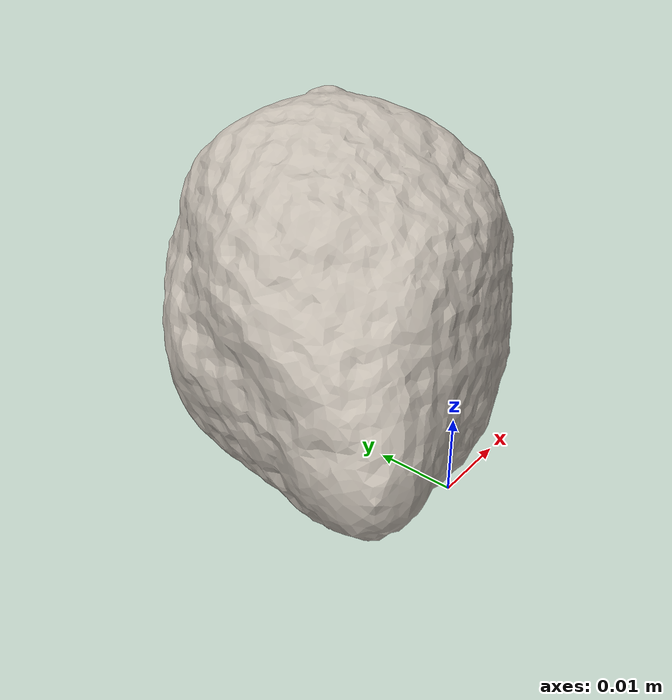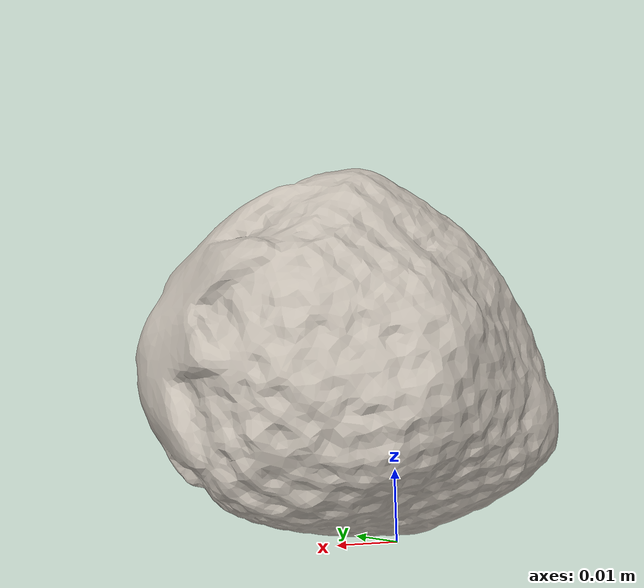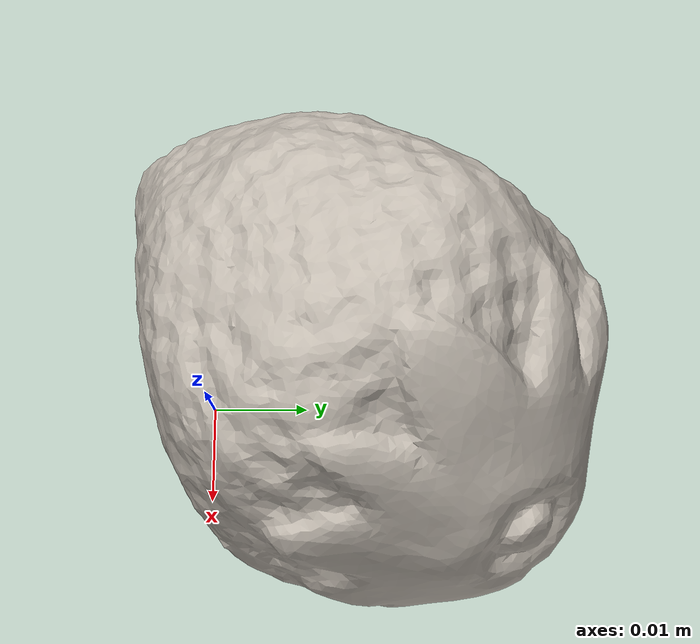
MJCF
<mujoco model="strawberry">
  <compiler angle="radian" meshdir="assets" texturedir="assets"/>
    <default>
        <default class="ycb_col">
            <geom contype="1" conaffinity="1" group="3" rgba=".4 .5 .6 1"/>
        </default>
        <default class="ycb_viz">
            <geom contype="0" conaffinity="0" type="mesh" mass="0"/>
        </default>
    </default>
  <asset>
    <texture type="2d" name="strawberry_tex" file="texture_map.png"/>
    <material name="strawberry_mat" texture="strawberry_tex" specular="0.5" shininess="0.5"/>
    <mesh file="textured.obj" name="strawberry"/>
    <mesh file="textured_collision_0.obj" name="strawberry_collision_0"/>
  </asset>
  <worldbody>
      <geom class="ycb_viz" material="strawberry_mat" mesh="strawberry"/>
      <geom class="ycb_col" mesh="strawberry_collision_0" conaffinity="1" condim="4" friction="0.1 0.1 0.1" mass="0.018" rgba="1 1 1 1" solimp="0.99 0.99 0.01" solref=".001 0.1" type="mesh" group="3"/>
  </worldbody>
</mujoco>
